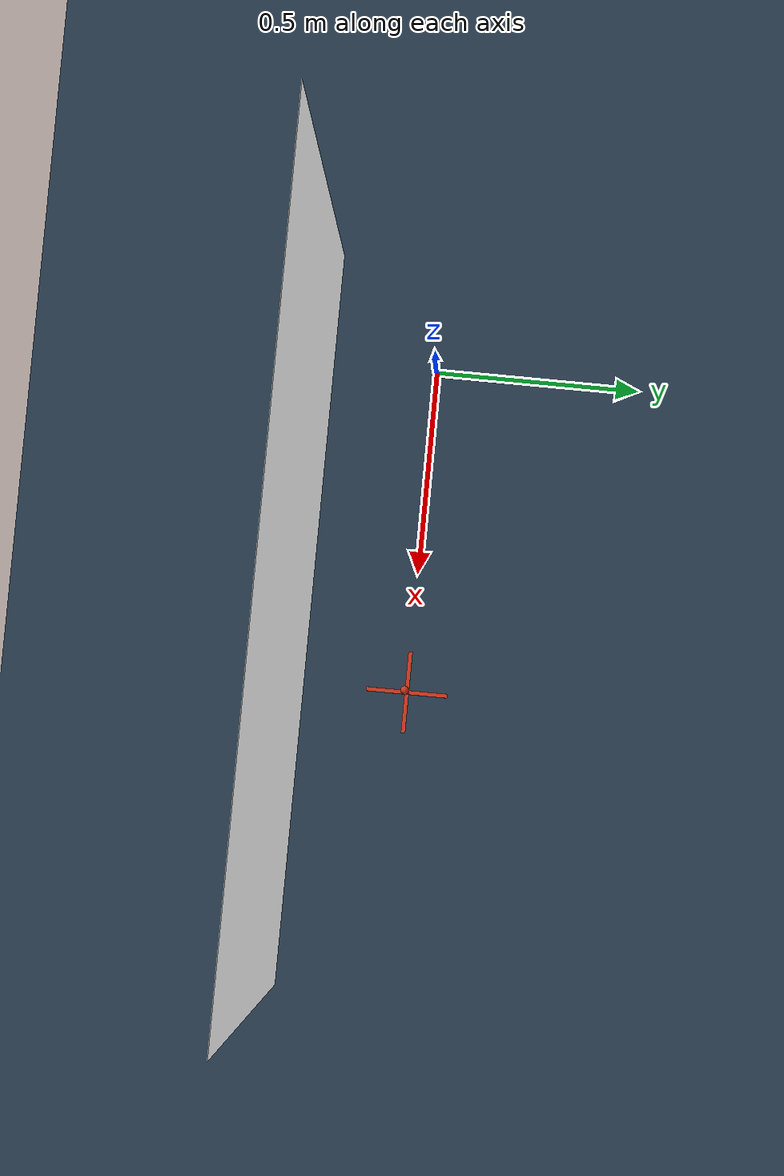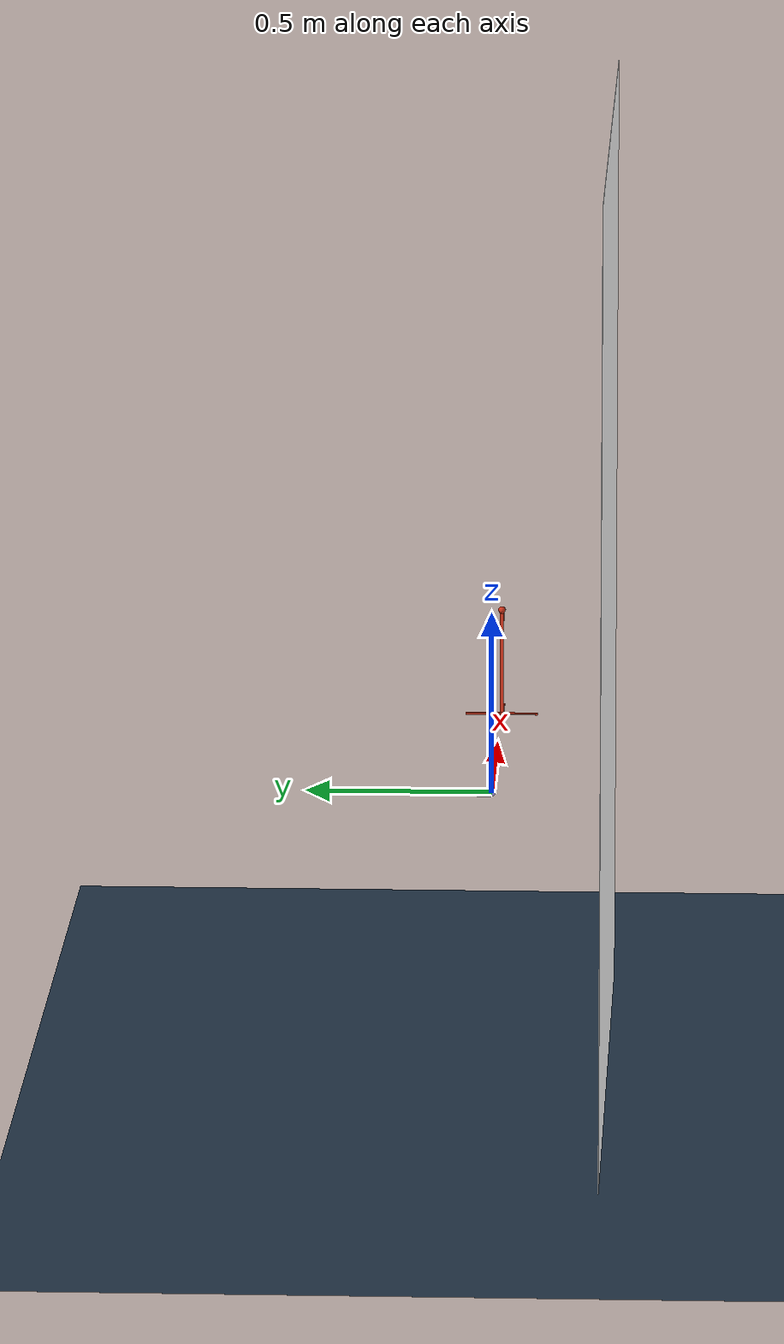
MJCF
<mujoco model="base">
  <statistic extent="2" meansize=".05" />
  <compiler angle="radian" coordinate="local" eulerseq="XYZ" />
  <option impratio="1" timestep="0.0005" solver="Newton" iterations="30" tolerance="1e-10" jacobian="sparse" cone="elliptic" integrator="implicit"/>
  <size nconmax="5000" njmax="5000" />

  <extension></extension>

  <asset>
    <texture type="skybox" builtin="gradient" rgb1="1. 1. 0.9" rgb2="0.9 0.9 0.81" width="512" height="512"/>
    <texture name="texplane" type="2d" builtin="checker" rgb1=".2 .3 .4" rgb2=".1 0.15 0.2" width="512" height="512" mark="cross" markrgb=".8 .8 .8"/>
    <material name="matplane" reflectance="0.3" texture="texplane" texrepeat="1 1" texuniform="true"/>
  </asset>

  <visual>
    <rgba haze="0.15 0.25 0.35 1"/>
    <quality shadowsize="2048"/>
    <map znear="0.001" stiffness="700" shadowscale="0.5" fogstart="10" fogend="15" zfar="40" haze="0.3"/>
  </visual>

  <actuator></actuator>

  <worldbody>
    <!-- Floor -->
    <camera mode="fixed" pos="0 -1 1.5" quat="0.866 0.5 0 0"/>
    <camera mode="fixed" pos="1. -1.2 0.8" quat="0.687 0.527 0.304 0.397"/>
    <camera mode="fixed" pos="-1.8 -1.1 .7" quat="0.73296292  0.56242221 -0.23296292 -0.30360319"/>
    <camera mode="fixed" pos="-1 -1.5 .5" quat="0.707 0.707 0 0"/>
    <camera mode="fixed" pos="9.7 -1.0 1.1" quat="0.687 0.527 0.304 0.397"/>
    <camera mode="fixed" pos="4.5 -8.0 .5" quat="0.707 0.707 0 0"/>
    <geom condim="1" material="matplane" name="floor" pos="0 0 -1" size="3 3 .125" type="plane"/>
    <geom contype="0" conaffinity="0" rgba="1 1 1 1" name="whiteback" pos="0.6 -0.3 0.35" quat="0.707 -0.707 0 0" size="1.0 1.35 0.125" type="plane"/>
    <light directional="true" diffuse=".4 .4 .4" specular="0.1 0.1 0.1" pos="0 0 5.0" dir="0 0 -1" castshadow="false"/>
    <light directional="true" diffuse=".6 .6 .6" specular="0.2 0.2 0.2" pos="0 0 4" dir="0 0 -1"/>

    <site name="ax_y" pos="0 0.1 0" quat="0.707 0.707 0 0" size="0.01 0.1" rgba="1 1 0 0.3" type="cylinder" group="1" />
    <site name="ax_x" pos="0.1 0 0" quat="0.707 0 0.707 0" size="0.01 0.1" rgba="0 0 1 0.3" type="cylinder" group="1" />

    <body name="teststand" pos="0.793 0 0.3">
      <site name="testball_geom" pos="0 0 0" type="sphere" size="0.01 0.01 0.01" rgba=".8 .2 .1 1"/>
      <site name="teststand_geom" pos="0 0 -0.15" type="box" size="0.005 0.005 0.1422" rgba=".8 .2 .1 1"/>
      <body name="standbase" pos="0 0 -0.298">
        <site name="base_geom1" pos="0 0 0" type="box" size="0.10 0.005 0.002" rgba=".8 .2 .1 1"/>
        <site name="base_geom2" pos="0 0 0" type="box" size="0.005 0.10 0.002" rgba=".8 .2 .1 1"/>
      </body>
    </body>

    <!-- Change the joint edits in env when removing or adding new bodies -->
    <!-- Mainly for 2D case when joint editing is required -->
  </worldbody>

  <sensor></sensor>

  <equality></equality>

  <contact></contact>

</mujoco>
